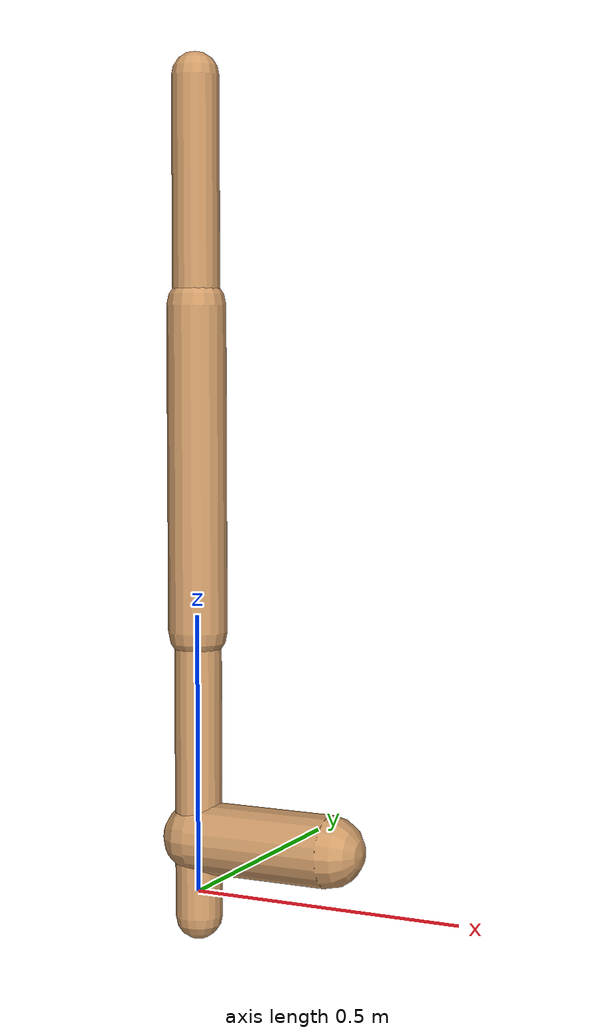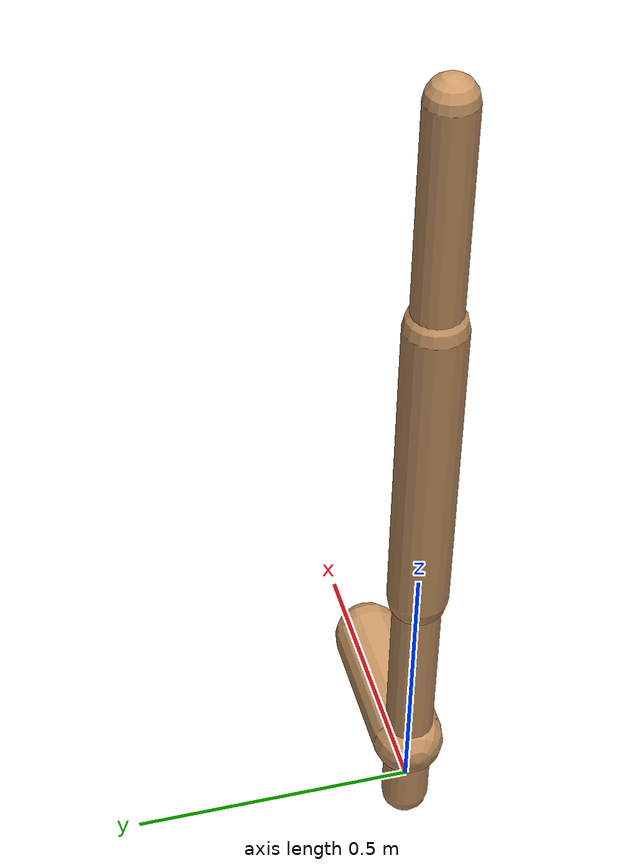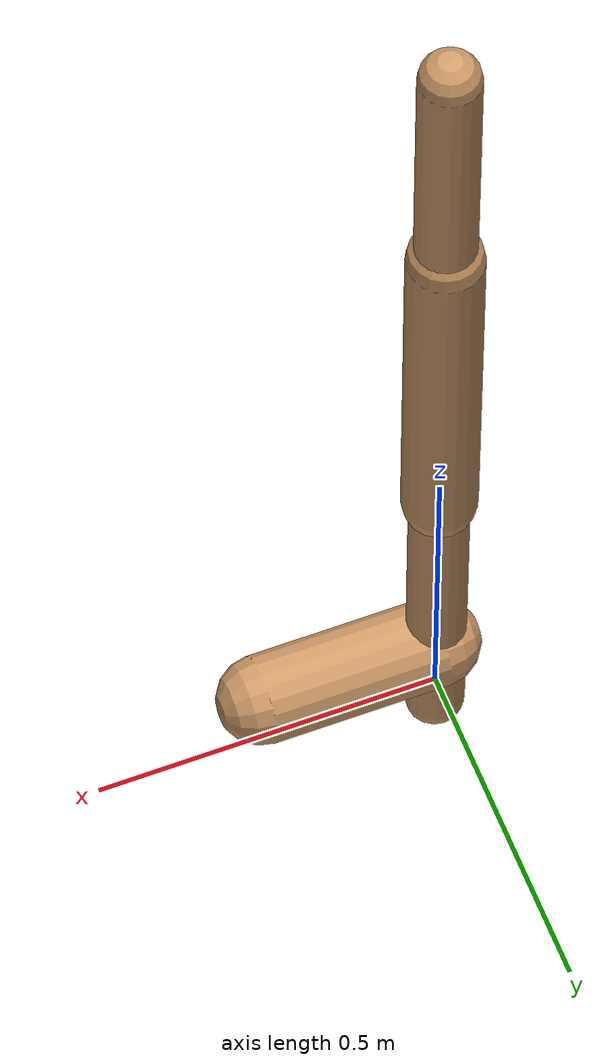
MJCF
<mujoco model="walker2d">
  <compiler angle="degree" coordinate="global" inertiafromgeom="true" />
  <default>
    <joint armature="0.01" damping=".1" limited="true" />
    <geom conaffinity="0" condim="3" contype="1" density="1000" friction="0.8 .1 .1" rgba="0.8 0.6 .4 1" />
  </default>
  <option integrator="RK4" timestep="0.002" />
  <worldbody>

    <body name="torso" pos="0 0 0.27201546115996833">
      <joint armature="0" axis="1 0 0" damping="0" limited="false" name="ignorex" pos="0 0 0" stiffness="0" type="slide" />
      <joint armature="0" axis="0 0 1" damping="0" limited="false" name="ignorez" pos="0 0 0" ref="1.25" stiffness="0" type="slide" />
      <joint armature="0" axis="0 1 0" damping="0" limited="false" name="ignorey" pos="0 0 0" stiffness="0" type="hinge" />
      <geom fromto="0 0 1.45 0 0 1.05" name="torso_geom" size="0.04219292282155447" type="capsule" />
      <body name="thigh">
        <joint axis="0 -1 0" name="thigh_joint" pos="0 0 1.05" range="-150 0" type="hinge" />
        <geom fromto="0.0 0.0 1.05 0.0 0.0 0.47115057102948865" name="thigh_geom" size="0.05292789250380009" type="capsule" />
        <body name="leg" pos="0.0 0.0 -0.12884942897051133">
          <joint axis="0 -1 0" name="leg_joint" pos="0 0 0.6" range="-150 0" type="hinge" />
          <geom fromto="0.0 0.0 0.6 0.0 0.0 -0.043166032189457" name="leg_geom" size="0.042342314003040074" type="capsule" />
          <body name="foot" pos="0.0 0.0 -0.143166032189457">
            <joint axis="0 -1 0" name="foot_joint" pos="0 0 0.1" range="-45 45" type="hinge" />
            <geom fromto="-0.0 0.0 0.1 0.25880621811737986 0.0 0.1" name="foot_geom" size="0.06393854821054808" type="capsule" />
          </body>
        </body>
      </body>

      <body name="thigh_left">
        <joint axis="0 -1 0" name="thigh_left_joint" pos="0 0 1.05" range="-150 0" type="hinge" />
        <geom fromto="0.0 0.0 1.05 0.0 0.0 0.47115057102948865" name="thigh_left_geom" rgba=".7 .3 .6 1" size="0.05292789250380009" type="capsule" />
        <body name="leg_left" pos="0.0 0.0 -0.12884942897051133">
          <joint axis="0 -1 0" name="leg_left_joint" pos="0 0 0.6" range="-150 0" type="hinge" />
          <geom fromto="0.0 0.0 0.6 0.0 0.0 -0.043166032189457" name="leg_left_geom" rgba=".7 .3 .6 1" size="0.042342314003040074" type="capsule" />
          <body name="foot_left" pos="0.0 0.0 -0.143166032189457">
            <joint axis="0 -1 0" name="foot_left_joint" pos="0 0 0.1" range="-45 45" type="hinge" />
            <geom fromto="-0.0 0.0 0.1 0.25880621811737986 0.0 0.1" name="foot_left_geom" rgba=".7 .3 .6 1" size="0.06393854821054808" type="capsule" />
          </body>
        </body>
      </body>
    </body>
  </worldbody>
  <actuator>

    <motor ctrllimited="true" ctrlrange="-1.0 1.0" gear="100" joint="thigh_joint" />
    <motor ctrllimited="true" ctrlrange="-1.0 1.0" gear="100" joint="leg_joint" />
    <motor ctrllimited="true" ctrlrange="-1.0 1.0" gear="100" joint="foot_joint" />
    <motor ctrllimited="true" ctrlrange="-1.0 1.0" gear="100" joint="thigh_left_joint" />
    <motor ctrllimited="true" ctrlrange="-1.0 1.0" gear="100" joint="leg_left_joint" />
    <motor ctrllimited="true" ctrlrange="-1.0 1.0" gear="100" joint="foot_left_joint" />

  </actuator>
</mujoco>
